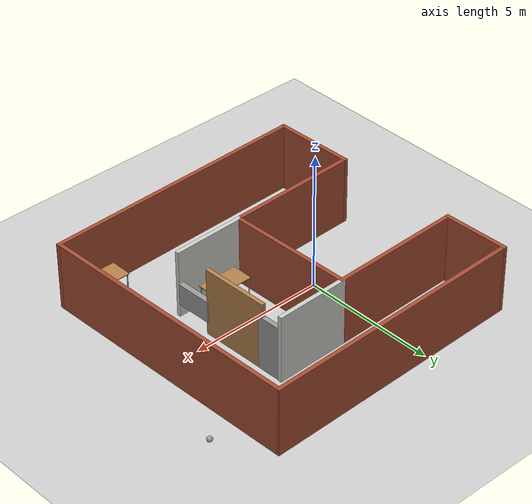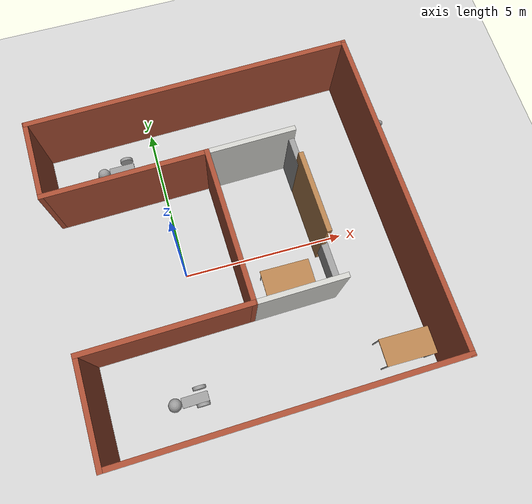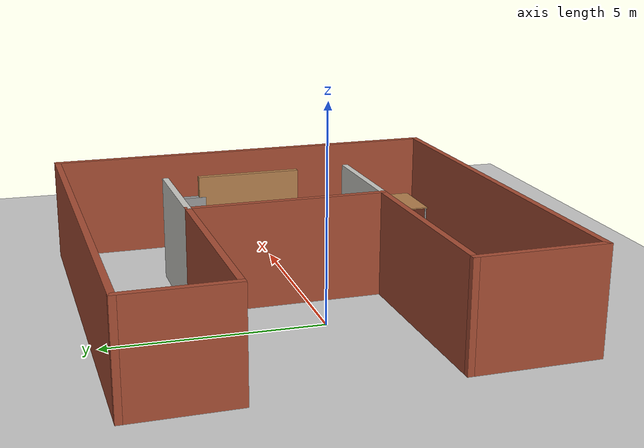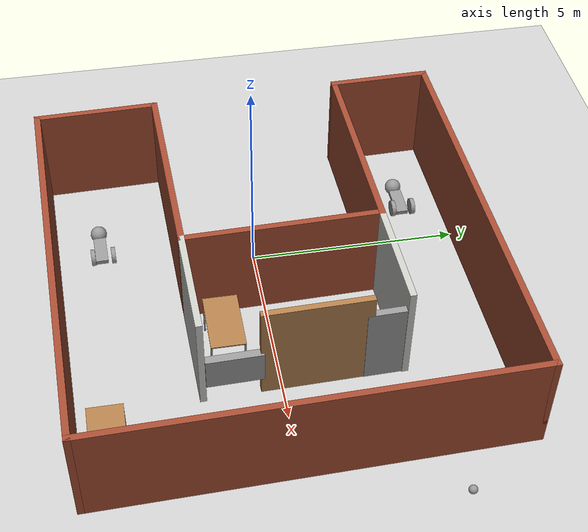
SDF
<sdf version="1.6">
 <world name="default">
  <plugin name="welcome" filename="libwelcome.so"/>
  <light name="sun" type="directional">
   <pose>0 0 10 0 -0 0</pose>
   <diffuse>0.8 0.8 0.8 1</diffuse>
   <specular>0.2 0.2 0.2 1</specular>
   <attenuation>
    <range>1000</range>
    <constant>0.9</constant>
    <linear>0.01</linear>
    <quadratic>0.001</quadratic>
   </attenuation>
   <direction>-0.5 0.1 -0.9</direction>
  </light>
  <model name="ground_plane">
   <static>1</static>
   <link name="link">
    <collision name="collision">
     <geometry><plane><normal>0 0 1</normal><size>100 100</size></plane></geometry>
     <surface>
      <contact><collide_bitmask>65535</collide_bitmask></contact>
      <friction><ode><mu>100</mu><mu2>50</mu2></ode></friction>
     </surface>
    </collision>
    <visual name="visual">
     <cast_shadows>0</cast_shadows>
     <geometry><plane><normal>0 0 1</normal><size>100 100</size></plane></geometry>
     <material>
      <script><uri>file://media/materials/scripts/gazebo.material</uri><name>Gazebo/Grey</name></script>
     </material>
    </visual>
   </link>
  </model>
  <gravity>0 0 -9.8</gravity>
  <magnetic_field>6e-06 2.3e-05 -4.2e-05</magnetic_field>
  <atmosphere type="adiabatic"/>
  <physics name="default_physics" default="0" type="ode">
   <max_step_size>0.001</max_step_size>
   <real_time_factor>1</real_time_factor>
   <real_time_update_rate>1000</real_time_update_rate>
  </physics>
  <scene><ambient>0.4 0.4 0.4 1</ambient><background>0.7 0.7 0.7 1</background><shadows>1</shadows></scene>
  <spherical_coordinates>
   <surface_model>EARTH_WGS84</surface_model>
   <latitude_deg>0</latitude_deg>
   <longitude_deg>0</longitude_deg>
   <elevation>0</elevation>
   <heading_deg>0</heading_deg>
  </spherical_coordinates>
  <model name="room">
   <pose>1.60544 0.182363 0 0 -0 1.59414</pose>
   <link name="Door_0">
    <collision name="Door_0_Collision">
     <geometry><box><size>0.9 0.17 2</size></box></geometry>
     <pose>0 0 1 0 -0 0</pose>
    </collision>
    <visual name="Door_0_Visual">
     <pose>0 0 1 0 -0 0</pose>
     <geometry><box><size>0.9 0.17 2</size></box></geometry>
     <material>
      <script><uri>file://media/materials/scripts/gazebo.material</uri><name>Gazebo/Grey</name></script>
     </material>
    </visual>
    <pose>2.07085 -2.49646 0 0 -0 0</pose>
   </link>
   <link name="Wall_0">
    <collision name="Wall_0_Collision">
     <geometry><box><size>10 0.15 2.5</size></box></geometry>
     <pose>0 0 1.25 0 -0 0</pose>
    </collision>
    <visual name="Wall_0_Visual">
     <pose>0 0 1.25 0 -0 0</pose>
     <geometry><box><size>10 0.15 2.5</size></box></geometry>
     <material>
      <script><uri>file://media/materials/scripts/gazebo.material</uri><name>Gazebo/Bricks</name></script>
      <ambient>1 1 1 1</ambient>
     </material>
     <meta><layer>0</layer></meta>
    </visual>
    <pose>-4.925 0 0 0 0 -1.5708</pose>
   </link>
   <link name="Wall_1">
    <collision name="Wall_1_Collision">
     <geometry><box><size>10 0.15 2.5</size></box></geometry>
     <pose>0 0 1.25 0 -0 0</pose>
    </collision>
    <visual name="Wall_1_Visual">
     <pose>0 0 1.25 0 -0 0</pose>
     <geometry><box><size>10 0.15 2.5</size></box></geometry>
     <material>
      <script><uri>file://media/materials/scripts/gazebo.material</uri><name>Gazebo/Bricks</name></script>
      <ambient>1 1 1 1</ambient>
     </material>
     <meta><layer>0</layer></meta>
    </visual>
    <pose>0 -4.925 0 0 -0 0</pose>
   </link>
   <link name="Wall_11">
    <collision name="Wall_11_Collision">
     <geometry><box><size>2.75 0.15 2.5</size></box></geometry>
     <pose>0 0 1.25 0 -0 0</pose>
    </collision>
    <visual name="Wall_11_Visual">
     <pose>0 0 1.25 0 -0 0</pose>
     <geometry><box><size>2.75 0.15 2.5</size></box></geometry>
     <material>
      <script><uri>file://media/materials/scripts/gazebo.material</uri><name>Gazebo/CeilingTiled</name></script>
      <ambient>0.996078 0.47451 0.0196078 1</ambient>
     </material>
     <meta><layer>0</layer></meta>
    </visual>
    <pose>2.575 -1.225 0 0 0 -1.5708</pose>
   </link>
   <link name="Wall_13">
    <collision name="Wall_13_Collision">
     <geometry><box><size>2.5 0.15 2.5</size></box></geometry>
     <pose>0 0 1.25 0 -0 0</pose>
    </collision>
    <visual name="Wall_13_Visual">
     <pose>0 0 1.25 0 -0 0</pose>
     <geometry><box><size>2.5 0.15 2.5</size></box></geometry>
     <material>
      <script><uri>file://media/materials/scripts/gazebo.material</uri><name>Gazebo/Wood</name></script>
      <ambient>1 1 1 1</ambient>
     </material>
     <meta><layer>0</layer></meta>
    </visual>
    <pose>0.532632 -2.49646 0 0 -0 0</pose>
   </link>
   <link name="Wall_2">
    <collision name="Wall_2_Collision">
     <geometry><box><size>10 0.15 2.5</size></box></geometry>
     <pose>0 0 1.25 0 -0 0</pose>
    </collision>
    <visual name="Wall_2_Visual">
     <pose>0 0 1.25 0 -0 0</pose>
     <geometry><box><size>10 0.15 2.5</size></box></geometry>
     <material>
      <script><uri>file://media/materials/scripts/gazebo.material</uri><name>Gazebo/Bricks</name></script>
      <ambient>1 1 1 1</ambient>
     </material>
     <meta><layer>0</layer></meta>
    </visual>
    <pose>4.925 0 0 0 -0 1.5708</pose>
   </link>
   <link name="Wall_3">
    <collision name="Wall_3_Collision">
     <geometry><box><size>2.5 0.15 2.5</size></box></geometry>
     <pose>0 0 1.25 0 -0 0</pose>
    </collision>
    <visual name="Wall_3_Visual">
     <pose>0 0 1.25 0 -0 0</pose>
     <geometry><box><size>2.5 0.15 2.5</size></box></geometry>
     <material>
      <script><uri>file://media/materials/scripts/gazebo.material</uri><name>Gazebo/Bricks</name></script>
      <ambient>1 1 1 1</ambient>
     </material>
     <meta><layer>0</layer></meta>
    </visual>
    <pose>3.75 4.925 0 0 -0 3.14159</pose>
   </link>
   <link name="Wall_4">
    <collision name="Wall_4_Collision">
     <geometry><box><size>5 0.15 2.5</size></box></geometry>
     <pose>0 0 1.25 0 -0 0</pose>
    </collision>
    <visual name="Wall_4_Visual">
     <pose>0 0 1.25 0 -0 0</pose>
     <geometry><box><size>5 0.15 2.5</size></box></geometry>
     <material>
      <script><uri>file://media/materials/scripts/gazebo.material</uri><name>Gazebo/Bricks</name></script>
      <ambient>1 1 1 1</ambient>
     </material>
     <meta><layer>0</layer></meta>
    </visual>
    <pose>2.575 2.5 0 0 0 -1.5708</pose>
   </link>
   <link name="Wall_5">
    <collision name="Wall_5_Collision">
     <geometry><box><size>4.75 0.15 2.5</size></box></geometry>
     <pose>0 0 1.25 0 -0 0</pose>
    </collision>
    <visual name="Wall_5_Visual">
     <pose>0 0 1.25 0 -0 0</pose>
     <geometry><box><size>4.75 0.15 2.5</size></box></geometry>
     <material>
      <script><uri>file://media/materials/scripts/gazebo.material</uri><name>Gazebo/Bricks</name></script>
      <ambient>1 1 1 1</ambient>
     </material>
     <meta><layer>0</layer></meta>
    </visual>
    <pose>0.275 0.075 0 0 -0 3.14159</pose>
   </link>
   <link name="Wall_6">
    <collision name="Wall_6_Collision">
     <geometry><box><size>5 0.15 2.5</size></box></geometry>
     <pose>0 0 1.25 0 -0 0</pose>
    </collision>
    <visual name="Wall_6_Visual">
     <pose>0 0 1.25 0 -0 0</pose>
     <geometry><box><size>5 0.15 2.5</size></box></geometry>
     <material>
      <script><uri>file://media/materials/scripts/gazebo.material</uri><name>Gazebo/Bricks</name></script>
      <ambient>1 1 1 1</ambient>
     </material>
     <meta><layer>0</layer></meta>
    </visual>
    <pose>-2.025 2.5 0 0 -0 1.5708</pose>
   </link>
   <link name="Wall_7">
    <collision name="Wall_7_Collision">
     <geometry><box><size>3.05 0.15 2.5</size></box></geometry>
     <pose>0 0 1.25 0 -0 0</pose>
    </collision>
    <visual name="Wall_7_Visual">
     <pose>0 0 1.25 0 -0 0</pose>
     <geometry><box><size>3.05 0.15 2.5</size></box></geometry>
     <material>
      <script><uri>file://media/materials/scripts/gazebo.material</uri><name>Gazebo/Bricks</name></script>
      <ambient>1 1 1 1</ambient>
     </material>
     <meta><layer>0</layer></meta>
    </visual>
    <pose>-3.475 4.925 0 0 -0 3.14159</pose>
   </link>
   <link name="Wall_9">
    <collision name="Wall_9_Collision">
     <geometry><box><size>2.75 0.15 2.5</size></box></geometry>
     <pose>0 0 1.25 0 -0 0</pose>
    </collision>
    <visual name="Wall_9_Visual">
     <pose>0 0 1.25 0 -0 0</pose>
     <geometry><box><size>2.75 0.15 2.5</size></box></geometry>
     <material>
      <script><uri>file://media/materials/scripts/gazebo.material</uri><name>Gazebo/CeilingTiled</name></script>
      <ambient>0.435294 0.796078 0.67451 1</ambient>
     </material>
     <meta><layer>0</layer></meta>
    </visual>
    <pose>-2.025 -1.225 0 0 0 -1.5708</pose>
   </link>
   <link name="Window_0">
    <collision name="Window_0_Collision">
     <geometry><box><size>1.3054 0.2 0.8</size></box></geometry>
     <pose>0 0 0.4 0 -0 0</pose>
    </collision>
    <visual name="Window_0_Visual">
     <pose>0 0 0.4 0 -0 0</pose>
     <geometry><box><size>1.3054 0.2 0.8</size></box></geometry>
     <material>
      <script><uri>file://media/materials/scripts/gazebo.material</uri><name>Gazebo/Grey</name></script>
     </material>
    </visual>
    <pose>-1.29407 -2.52306 0.5 0 -0 0</pose>
   </link>
   <static>1</static>
  </model>
  <model name="table">
   <static>1</static>
   <link name="link">
    <collision name="surface">
     <pose>0 0 1 0 -0 0</pose>
     <geometry><box><size>1.5 0.8 0.03</size></box></geometry>
     <surface><friction><ode><mu>0.6</mu><mu2>0.6</mu2></ode></friction></surface>
    </collision>
    <visual name="visual1">
     <pose>0 0 1 0 -0 0</pose>
     <geometry><box><size>1.5 0.8 0.03</size></box></geometry>
     <material>
      <script><uri>file://media/materials/scripts/gazebo.material</uri><name>Gazebo/Wood</name></script>
     </material>
    </visual>
    <collision name="front_left_leg">
     <pose>0.68 0.38 0.5 0 -0 0</pose>
     <geometry><cylinder><radius>0.02</radius><length>1</length></cylinder></geometry>
    </collision>
    <visual name="front_left_leg">
     <pose>0.68 0.38 0.5 0 -0 0</pose>
     <geometry><cylinder><radius>0.02</radius><length>1</length></cylinder></geometry>
     <material>
      <script><uri>file://media/materials/scripts/gazebo.material</uri><name>Gazebo/Grey</name></script>
     </material>
    </visual>
    <collision name="front_right_leg">
     <pose>0.68 -0.38 0.5 0 -0 0</pose>
     <geometry><cylinder><radius>0.02</radius><length>1</length></cylinder></geometry>
    </collision>
    <visual name="front_right_leg">
     <pose>0.68 -0.38 0.5 0 -0 0</pose>
     <geometry><cylinder><radius>0.02</radius><length>1</length></cylinder></geometry>
     <material>
      <script><uri>file://media/materials/scripts/gazebo.material</uri><name>Gazebo/Grey</name></script>
     </material>
    </visual>
    <collision name="back_right_leg">
     <pose>-0.68 -0.38 0.5 0 -0 0</pose>
     <geometry><cylinder><radius>0.02</radius><length>1</length></cylinder></geometry>
    </collision>
    <visual name="back_right_leg">
     <pose>-0.68 -0.38 0.5 0 -0 0</pose>
     <geometry><cylinder><radius>0.02</radius><length>1</length></cylinder></geometry>
     <material>
      <script><uri>file://media/materials/scripts/gazebo.material</uri><name>Gazebo/Grey</name></script>
     </material>
    </visual>
    <collision name="back_left_leg">
     <pose>-0.68 0.38 0.5 0 -0 0</pose>
     <geometry><cylinder><radius>0.02</radius><length>1</length></cylinder></geometry>
    </collision>
    <visual name="back_left_leg">
     <pose>-0.68 0.38 0.5 0 -0 0</pose>
     <geometry><cylinder><radius>0.02</radius><length>1</length></cylinder></geometry>
     <material>
      <script><uri>file://media/materials/scripts/gazebo.material</uri><name>Gazebo/Grey</name></script>
     </material>
    </visual>
   </link>
   <pose>2.86036 -1.10214 0 0 -0 0</pose>
  </model>
  <model name="table_0">
   <static>1</static>
   <link name="link">
    <collision name="surface">
     <pose>0 0 1 0 -0 0</pose>
     <geometry><box><size>1.5 0.8 0.03</size></box></geometry>
     <surface><friction><ode><mu>0.6</mu><mu2>0.6</mu2></ode></friction></surface>
    </collision>
    <visual name="visual1">
     <pose>0 0 1 0 -0 0</pose>
     <geometry><box><size>1.5 0.8 0.03</size></box></geometry>
     <material>
      <script><uri>file://media/materials/scripts/gazebo.material</uri><name>Gazebo/Wood</name></script>
     </material>
    </visual>
    <collision name="front_left_leg">
     <pose>0.68 0.38 0.5 0 -0 0</pose>
     <geometry><cylinder><radius>0.02</radius><length>1</length></cylinder></geometry>
    </collision>
    <visual name="front_left_leg">
     <pose>0.68 0.38 0.5 0 -0 0</pose>
     <geometry><cylinder><radius>0.02</radius><length>1</length></cylinder></geometry>
     <material>
      <script><uri>file://media/materials/scripts/gazebo.material</uri><name>Gazebo/Grey</name></script>
     </material>
    </visual>
    <collision name="front_right_leg">
     <pose>0.68 -0.38 0.5 0 -0 0</pose>
     <geometry><cylinder><radius>0.02</radius><length>1</length></cylinder></geometry>
    </collision>
    <visual name="front_right_leg">
     <pose>0.68 -0.38 0.5 0 -0 0</pose>
     <geometry><cylinder><radius>0.02</radius><length>1</length></cylinder></geometry>
     <material>
      <script><uri>file://media/materials/scripts/gazebo.material</uri><name>Gazebo/Grey</name></script>
     </material>
    </visual>
    <collision name="back_right_leg">
     <pose>-0.68 -0.38 0.5 0 -0 0</pose>
     <geometry><cylinder><radius>0.02</radius><length>1</length></cylinder></geometry>
    </collision>
    <visual name="back_right_leg">
     <pose>-0.68 -0.38 0.5 0 -0 0</pose>
     <geometry><cylinder><radius>0.02</radius><length>1</length></cylinder></geometry>
     <material>
      <script><uri>file://media/materials/scripts/gazebo.material</uri><name>Gazebo/Grey</name></script>
     </material>
    </visual>
    <collision name="back_left_leg">
     <pose>-0.68 0.38 0.5 0 -0 0</pose>
     <geometry><cylinder><radius>0.02</radius><length>1</length></cylinder></geometry>
    </collision>
    <visual name="back_left_leg">
     <pose>-0.68 0.38 0.5 0 -0 0</pose>
     <geometry><cylinder><radius>0.02</radius><length>1</length></cylinder></geometry>
     <material>
      <script><uri>file://media/materials/scripts/gazebo.material</uri><name>Gazebo/Grey</name></script>
     </material>
    </visual>
   </link>
   <pose>5.56028 -3.9158 0 0 -0 0</pose>
  </model>
  <model name="robot">
   <link name="link_0">
    <pose>0.05 -0.0225 0 0 -0 0</pose>
    <inertial>
     <mass>1</mass>
     <inertia>
      <ixx>0.166667</ixx>
      <ixy>0</ixy>
      <ixz>0</ixz>
      <iyy>0.166667</iyy>
      <iyz>0</iyz>
      <izz>0.166667</izz>
     </inertia>
    </inertial>
    <visual name="visual">
     <geometry><box><size>0.8 0.3 0.1</size></box></geometry>
     <material>
      <lighting>1</lighting>
      <script><uri>file://media/materials/scripts/gazebo.material</uri><name>Gazebo/Grey</name></script>
      <shader type="pixel"><normal_map>__default__</normal_map></shader>
      <ambient>0.3 0.3 0.3 1</ambient>
      <diffuse>0.7 0.7 0.7 1</diffuse>
      <specular>0.01 0.01 0.01 1</specular>
      <emissive>0 0 0 1</emissive>
     </material>
    </visual>
    <collision name="collision">
     <geometry><box><size>0.8 0.3 0.1</size></box></geometry>
     <surface>
      <friction>
       <ode><mu>1</mu><mu2>1</mu2><fdir1>0 0 0</fdir1><slip1>0</slip1><slip2>0</slip2></ode>
       <torsional>
        <coefficient>1</coefficient>
        <patch_radius>0</patch_radius>
        <surface_radius>0</surface_radius>
        <use_patch_radius>1</use_patch_radius>
        <ode><slip>0</slip></ode>
       </torsional>
      </friction>
      <bounce><restitution_coefficient>0</restitution_coefficient><threshold>1e+06</threshold></bounce>
      <contact>
       <collide_without_contact>0</collide_without_contact>
       <collide_without_contact_bitmask>1</collide_without_contact_bitmask>
       <collide_bitmask>1</collide_bitmask>
       <ode>
        <soft_cfm>0</soft_cfm>
        <soft_erp>0.2</soft_erp>
        <kp>1e+13</kp>
        <kd>1</kd>
        <max_vel>0.01</max_vel>
        <min_depth>0</min_depth>
       </ode>
       <bullet>
        <split_impulse>1</split_impulse>
        <split_impulse_penetration_threshold>-0.01</split_impulse_penetration_threshold>
        <soft_cfm>0</soft_cfm>
        <soft_erp>0.2</soft_erp>
        <kp>1e+13</kp>
        <kd>1</kd>
       </bullet>
      </contact>
     </surface>
    </collision>
   </link>
   <link name="link_1">
    <pose>0.25 0.267519 0 1.5707 -0 0</pose>
    <inertial>
     <mass>1</mass>
     <inertia><ixx>0.145833</ixx><ixy>0</ixy><ixz>0</ixz><iyy>0.145833</iyy><iyz>0</iyz><izz>0.125</izz></inertia>
    </inertial>
    <visual name="visual">
     <geometry><cylinder><radius>0.2</radius><length>0.1</length></cylinder></geometry>
     <material>
      <lighting>1</lighting>
      <script><uri>file://media/materials/scripts/gazebo.material</uri><name>Gazebo/Grey</name></script>
      <shader type="pixel"><normal_map>__default__</normal_map></shader>
      <ambient>0.3 0.3 0.3 1</ambient>
      <diffuse>0.7 0.7 0.7 1</diffuse>
      <specular>0.01 0.01 0.01 1</specular>
      <emissive>0 0 0 1</emissive>
     </material>
    </visual>
    <collision name="collision">
     <geometry><cylinder><radius>0.2</radius><length>0.1</length></cylinder></geometry>
     <surface>
      <friction>
       <ode><mu>1</mu><mu2>1</mu2><fdir1>0 0 0</fdir1><slip1>0</slip1><slip2>0</slip2></ode>
       <torsional>
        <coefficient>1</coefficient>
        <patch_radius>0</patch_radius>
        <surface_radius>0</surface_radius>
        <use_patch_radius>1</use_patch_radius>
        <ode><slip>0</slip></ode>
       </torsional>
      </friction>
      <bounce><restitution_coefficient>0</restitution_coefficient><threshold>1e+06</threshold></bounce>
      <contact>
       <collide_without_contact>0</collide_without_contact>
       <collide_without_contact_bitmask>1</collide_without_contact_bitmask>
       <collide_bitmask>1</collide_bitmask>
       <ode>
        <soft_cfm>0</soft_cfm>
        <soft_erp>0.2</soft_erp>
        <kp>1e+13</kp>
        <kd>1</kd>
        <max_vel>0.01</max_vel>
        <min_depth>0</min_depth>
       </ode>
       <bullet>
        <split_impulse>1</split_impulse>
        <split_impulse_penetration_threshold>-0.01</split_impulse_penetration_threshold>
        <soft_cfm>0</soft_cfm>
        <soft_erp>0.2</soft_erp>
        <kp>1e+13</kp>
        <kd>1</kd>
       </bullet>
      </contact>
     </surface>
    </collision>
   </link>
   <link name="link_1_clone">
    <pose>0.25 -0.222519 0 1.5707 -0 0</pose>
    <inertial>
     <mass>1</mass>
     <inertia><ixx>0.145833</ixx><ixy>0</ixy><ixz>0</ixz><iyy>0.145833</iyy><iyz>0</iyz><izz>0.125</izz></inertia>
    </inertial>
    <visual name="visual">
     <geometry><cylinder><radius>0.2</radius><length>0.1</length></cylinder></geometry>
     <material>
      <lighting>1</lighting>
      <script><uri>file://media/materials/scripts/gazebo.material</uri><name>Gazebo/Grey</name></script>
      <shader type="pixel"><normal_map>__default__</normal_map></shader>
      <ambient>0.3 0.3 0.3 1</ambient>
      <diffuse>0.7 0.7 0.7 1</diffuse>
      <specular>0.01 0.01 0.01 1</specular>
      <emissive>0 0 0 1</emissive>
     </material>
    </visual>
    <collision name="collision">
     <geometry><cylinder><radius>0.2</radius><length>0.1</length></cylinder></geometry>
     <surface>
      <friction>
       <ode><mu>1</mu><mu2>1</mu2><fdir1>0 0 0</fdir1><slip1>0</slip1><slip2>0</slip2></ode>
       <torsional>
        <coefficient>1</coefficient>
        <patch_radius>0</patch_radius>
        <surface_radius>0</surface_radius>
        <use_patch_radius>1</use_patch_radius>
        <ode><slip>0</slip></ode>
       </torsional>
      </friction>
      <bounce><restitution_coefficient>0</restitution_coefficient><threshold>1e+06</threshold></bounce>
      <contact>
       <collide_without_contact>0</collide_without_contact>
       <collide_without_contact_bitmask>1</collide_without_contact_bitmask>
       <collide_bitmask>1</collide_bitmask>
       <ode>
        <soft_cfm>0</soft_cfm>
        <soft_erp>0.2</soft_erp>
        <kp>1e+13</kp>
        <kd>1</kd>
        <max_vel>0.01</max_vel>
        <min_depth>0</min_depth>
       </ode>
       <bullet>
        <split_impulse>1</split_impulse>
        <split_impulse_penetration_threshold>-0.01</split_impulse_penetration_threshold>
        <soft_cfm>0</soft_cfm>
        <soft_erp>0.2</soft_erp>
        <kp>1e+13</kp>
        <kd>1</kd>
       </bullet>
      </contact>
     </surface>
    </collision>
   </link>
   <link name="link_2">
    <pose>-0.55 -0.0225 0 0 -0 0</pose>
    <inertial>
     <mass>1</mass>
     <inertia><ixx>0.1</ixx><ixy>0</ixy><ixz>0</ixz><iyy>0.1</iyy><iyz>0</iyz><izz>0.1</izz></inertia>
    </inertial>
    <visual name="visual">
     <geometry><sphere><radius>0.2</radius></sphere></geometry>
     <material>
      <lighting>1</lighting>
      <script><uri>file://media/materials/scripts/gazebo.material</uri><name>Gazebo/Grey</name></script>
      <shader type="pixel"><normal_map>__default__</normal_map></shader>
      <ambient>0.3 0.3 0.3 1</ambient>
      <diffuse>0.7 0.7 0.7 1</diffuse>
      <specular>0.01 0.01 0.01 1</specular>
      <emissive>0 0 0 1</emissive>
     </material>
    </visual>
    <collision name="collision">
     <geometry><sphere><radius>0.2</radius></sphere></geometry>
     <surface>
      <friction>
       <ode><mu>1</mu><mu2>1</mu2><fdir1>0 0 0</fdir1><slip1>0</slip1><slip2>0</slip2></ode>
       <torsional>
        <coefficient>1</coefficient>
        <patch_radius>0</patch_radius>
        <surface_radius>0</surface_radius>
        <use_patch_radius>1</use_patch_radius>
        <ode><slip>0</slip></ode>
       </torsional>
      </friction>
      <bounce><restitution_coefficient>0</restitution_coefficient><threshold>1e+06</threshold></bounce>
      <contact>
       <collide_without_contact>0</collide_without_contact>
       <collide_without_contact_bitmask>1</collide_without_contact_bitmask>
       <collide_bitmask>1</collide_bitmask>
       <ode>
        <soft_cfm>0</soft_cfm>
        <soft_erp>0.2</soft_erp>
        <kp>1e+13</kp>
        <kd>1</kd>
        <max_vel>0.01</max_vel>
        <min_depth>0</min_depth>
       </ode>
       <bullet>
        <split_impulse>1</split_impulse>
        <split_impulse_penetration_threshold>-0.01</split_impulse_penetration_threshold>
        <soft_cfm>0</soft_cfm>
        <soft_erp>0.2</soft_erp>
        <kp>1e+13</kp>
        <kd>1</kd>
       </bullet>
      </contact>
     </surface>
    </collision>
   </link>
   <joint name="link_0_JOINT_0" type="revolute">
    <parent>link_0</parent>
    <child>link_1</child>
    <axis>
     <xyz>0 0 1</xyz>
     <use_parent_model_frame>0</use_parent_model_frame>
     <limit>
      <lower>-1.79769e+308</lower>
      <upper>1.79769e+308</upper>
      <effort>-1</effort>
      <velocity>-1</velocity>
     </limit>
     <dynamics>
      <spring_reference>0</spring_reference>
      <spring_stiffness>0</spring_stiffness>
      <damping>0</damping>
     </dynamics>
    </axis>
    <physics>
     <ode><limit><cfm>0</cfm><erp>0.2</erp></limit><suspension><cfm>0</cfm><erp>0.2</erp></suspension></ode>
    </physics>
   </joint>
   <joint name="link_0_JOINT_1" type="revolute">
    <parent>link_0</parent>
    <child>link_1_clone</child>
    <axis>
     <xyz>0 0 1</xyz>
     <use_parent_model_frame>0</use_parent_model_frame>
     <limit>
      <lower>-1.79769e+308</lower>
      <upper>1.79769e+308</upper>
      <effort>-1</effort>
      <velocity>-1</velocity>
     </limit>
     <dynamics>
      <spring_reference>0</spring_reference>
      <spring_stiffness>0</spring_stiffness>
      <damping>0</damping>
     </dynamics>
    </axis>
    <physics>
     <ode><limit><cfm>0</cfm><erp>0.2</erp></limit><suspension><cfm>0</cfm><erp>0.2</erp></suspension></ode>
    </physics>
   </joint>
   <joint name="link_0_JOINT_3" type="ball">
    <parent>link_0</parent>
    <child>link_2</child>
    <physics>
     <ode><limit><cfm>0</cfm><erp>0.2</erp></limit><suspension><cfm>0</cfm><erp>0.2</erp></suspension></ode>
    </physics>
   </joint>
   <static>0</static>
   <pose>-0.707399 -3.66951 0.2 2e-06 -0 0.019978</pose>
  </model>
  <model name="robot_0">
   <link name="link_0">
    <pose>0.05 -0.0225 0 0 -0 0</pose>
    <inertial>
     <mass>1</mass>
     <inertia>
      <ixx>0.166667</ixx>
      <ixy>0</ixy>
      <ixz>0</ixz>
      <iyy>0.166667</iyy>
      <iyz>0</iyz>
      <izz>0.166667</izz>
     </inertia>
    </inertial>
    <visual name="visual">
     <geometry><box><size>0.8 0.3 0.1</size></box></geometry>
     <material>
      <lighting>1</lighting>
      <script><uri>file://media/materials/scripts/gazebo.material</uri><name>Gazebo/Grey</name></script>
      <shader type="pixel"><normal_map>__default__</normal_map></shader>
      <ambient>0.3 0.3 0.3 1</ambient>
      <diffuse>0.7 0.7 0.7 1</diffuse>
      <specular>0.01 0.01 0.01 1</specular>
      <emissive>0 0 0 1</emissive>
     </material>
    </visual>
    <collision name="collision">
     <geometry><box><size>0.8 0.3 0.1</size></box></geometry>
     <surface>
      <friction>
       <ode><mu>1</mu><mu2>1</mu2><fdir1>0 0 0</fdir1><slip1>0</slip1><slip2>0</slip2></ode>
       <torsional>
        <coefficient>1</coefficient>
        <patch_radius>0</patch_radius>
        <surface_radius>0</surface_radius>
        <use_patch_radius>1</use_patch_radius>
        <ode><slip>0</slip></ode>
       </torsional>
      </friction>
      <bounce><restitution_coefficient>0</restitution_coefficient><threshold>1e+06</threshold></bounce>
      <contact>
       <collide_without_contact>0</collide_without_contact>
       <collide_without_contact_bitmask>1</collide_without_contact_bitmask>
       <collide_bitmask>1</collide_bitmask>
       <ode>
        <soft_cfm>0</soft_cfm>
        <soft_erp>0.2</soft_erp>
        <kp>1e+13</kp>
        <kd>1</kd>
        <max_vel>0.01</max_vel>
        <min_depth>0</min_depth>
       </ode>
       <bullet>
        <split_impulse>1</split_impulse>
        <split_impulse_penetration_threshold>-0.01</split_impulse_penetration_threshold>
        <soft_cfm>0</soft_cfm>
        <soft_erp>0.2</soft_erp>
        <kp>1e+13</kp>
        <kd>1</kd>
       </bullet>
      </contact>
     </surface>
    </collision>
   </link>
   <link name="link_1">
    <pose>0.25 0.267519 0 1.5707 -0 0</pose>
    <inertial>
     <mass>1</mass>
     <inertia><ixx>0.145833</ixx><ixy>0</ixy><ixz>0</ixz><iyy>0.145833</iyy><iyz>0</iyz><izz>0.125</izz></inertia>
    </inertial>
    <visual name="visual">
     <geometry><cylinder><radius>0.2</radius><length>0.1</length></cylinder></geometry>
     <material>
      <lighting>1</lighting>
      <script><uri>file://media/materials/scripts/gazebo.material</uri><name>Gazebo/Grey</name></script>
      <shader type="pixel"><normal_map>__default__</normal_map></shader>
      <ambient>0.3 0.3 0.3 1</ambient>
      <diffuse>0.7 0.7 0.7 1</diffuse>
      <specular>0.01 0.01 0.01 1</specular>
      <emissive>0 0 0 1</emissive>
     </material>
    </visual>
    <collision name="collision">
     <geometry><cylinder><radius>0.2</radius><length>0.1</length></cylinder></geometry>
     <surface>
      <friction>
       <ode><mu>1</mu><mu2>1</mu2><fdir1>0 0 0</fdir1><slip1>0</slip1><slip2>0</slip2></ode>
       <torsional>
        <coefficient>1</coefficient>
        <patch_radius>0</patch_radius>
        <surface_radius>0</surface_radius>
        <use_patch_radius>1</use_patch_radius>
        <ode><slip>0</slip></ode>
       </torsional>
      </friction>
      <bounce><restitution_coefficient>0</restitution_coefficient><threshold>1e+06</threshold></bounce>
      <contact>
       <collide_without_contact>0</collide_without_contact>
       <collide_without_contact_bitmask>1</collide_without_contact_bitmask>
       <collide_bitmask>1</collide_bitmask>
       <ode>
        <soft_cfm>0</soft_cfm>
        <soft_erp>0.2</soft_erp>
        <kp>1e+13</kp>
        <kd>1</kd>
        <max_vel>0.01</max_vel>
        <min_depth>0</min_depth>
       </ode>
       <bullet>
        <split_impulse>1</split_impulse>
        <split_impulse_penetration_threshold>-0.01</split_impulse_penetration_threshold>
        <soft_cfm>0</soft_cfm>
        <soft_erp>0.2</soft_erp>
        <kp>1e+13</kp>
        <kd>1</kd>
       </bullet>
      </contact>
     </surface>
    </collision>
   </link>
   <link name="link_1_clone">
    <pose>0.25 -0.222519 0 1.5707 -0 0</pose>
    <inertial>
     <mass>1</mass>
     <inertia><ixx>0.145833</ixx><ixy>0</ixy><ixz>0</ixz><iyy>0.145833</iyy><iyz>0</iyz><izz>0.125</izz></inertia>
    </inertial>
    <visual name="visual">
     <geometry><cylinder><radius>0.2</radius><length>0.1</length></cylinder></geometry>
     <material>
      <lighting>1</lighting>
      <script><uri>file://media/materials/scripts/gazebo.material</uri><name>Gazebo/Grey</name></script>
      <shader type="pixel"><normal_map>__default__</normal_map></shader>
      <ambient>0.3 0.3 0.3 1</ambient>
      <diffuse>0.7 0.7 0.7 1</diffuse>
      <specular>0.01 0.01 0.01 1</specular>
      <emissive>0 0 0 1</emissive>
     </material>
    </visual>
    <collision name="collision">
     <geometry><cylinder><radius>0.2</radius><length>0.1</length></cylinder></geometry>
     <surface>
      <friction>
       <ode><mu>1</mu><mu2>1</mu2><fdir1>0 0 0</fdir1><slip1>0</slip1><slip2>0</slip2></ode>
       <torsional>
        <coefficient>1</coefficient>
        <patch_radius>0</patch_radius>
        <surface_radius>0</surface_radius>
        <use_patch_radius>1</use_patch_radius>
        <ode><slip>0</slip></ode>
       </torsional>
      </friction>
      <bounce><restitution_coefficient>0</restitution_coefficient><threshold>1e+06</threshold></bounce>
      <contact>
       <collide_without_contact>0</collide_without_contact>
       <collide_without_contact_bitmask>1</collide_without_contact_bitmask>
       <collide_bitmask>1</collide_bitmask>
       <ode>
        <soft_cfm>0</soft_cfm>
        <soft_erp>0.2</soft_erp>
        <kp>1e+13</kp>
        <kd>1</kd>
        <max_vel>0.01</max_vel>
        <min_depth>0</min_depth>
       </ode>
       <bullet>
        <split_impulse>1</split_impulse>
        <split_impulse_penetration_threshold>-0.01</split_impulse_penetration_threshold>
        <soft_cfm>0</soft_cfm>
        <soft_erp>0.2</soft_erp>
        <kp>1e+13</kp>
        <kd>1</kd>
       </bullet>
      </contact>
     </surface>
    </collision>
   </link>
   <link name="link_2">
    <pose>-0.55 -0.0225 0 0 -0 0</pose>
    <inertial>
     <mass>1</mass>
     <inertia><ixx>0.1</ixx><ixy>0</ixy><ixz>0</ixz><iyy>0.1</iyy><iyz>0</iyz><izz>0.1</izz></inertia>
    </inertial>
    <visual name="visual">
     <geometry><sphere><radius>0.2</radius></sphere></geometry>
     <material>
      <lighting>1</lighting>
      <script><uri>file://media/materials/scripts/gazebo.material</uri><name>Gazebo/Grey</name></script>
      <shader type="pixel"><normal_map>__default__</normal_map></shader>
      <ambient>0.3 0.3 0.3 1</ambient>
      <diffuse>0.7 0.7 0.7 1</diffuse>
      <specular>0.01 0.01 0.01 1</specular>
      <emissive>0 0 0 1</emissive>
     </material>
    </visual>
    <collision name="collision">
     <geometry><sphere><radius>0.2</radius></sphere></geometry>
     <surface>
      <friction>
       <ode><mu>1</mu><mu2>1</mu2><fdir1>0 0 0</fdir1><slip1>0</slip1><slip2>0</slip2></ode>
       <torsional>
        <coefficient>1</coefficient>
        <patch_radius>0</patch_radius>
        <surface_radius>0</surface_radius>
        <use_patch_radius>1</use_patch_radius>
        <ode><slip>0</slip></ode>
       </torsional>
      </friction>
      <bounce><restitution_coefficient>0</restitution_coefficient><threshold>1e+06</threshold></bounce>
      <contact>
       <collide_without_contact>0</collide_without_contact>
       <collide_without_contact_bitmask>1</collide_without_contact_bitmask>
       <collide_bitmask>1</collide_bitmask>
       <ode>
        <soft_cfm>0</soft_cfm>
        <soft_erp>0.2</soft_erp>
        <kp>1e+13</kp>
        <kd>1</kd>
        <max_vel>0.01</max_vel>
        <min_depth>0</min_depth>
       </ode>
       <bullet>
        <split_impulse>1</split_impulse>
        <split_impulse_penetration_threshold>-0.01</split_impulse_penetration_threshold>
        <soft_cfm>0</soft_cfm>
        <soft_erp>0.2</soft_erp>
        <kp>1e+13</kp>
        <kd>1</kd>
       </bullet>
      </contact>
     </surface>
    </collision>
   </link>
   <joint name="link_0_JOINT_0" type="revolute">
    <parent>link_0</parent>
    <child>link_1</child>
    <axis>
     <xyz>0 0 1</xyz>
     <use_parent_model_frame>0</use_parent_model_frame>
     <limit>
      <lower>-1.79769e+308</lower>
      <upper>1.79769e+308</upper>
      <effort>-1</effort>
      <velocity>-1</velocity>
     </limit>
     <dynamics>
      <spring_reference>0</spring_reference>
      <spring_stiffness>0</spring_stiffness>
      <damping>0</damping>
     </dynamics>
    </axis>
    <physics>
     <ode><limit><cfm>0</cfm><erp>0.2</erp></limit><suspension><cfm>0</cfm><erp>0.2</erp></suspension></ode>
    </physics>
   </joint>
   <joint name="link_0_JOINT_1" type="revolute">
    <parent>link_0</parent>
    <child>link_1_clone</child>
    <axis>
     <xyz>0 0 1</xyz>
     <use_parent_model_frame>0</use_parent_model_frame>
     <limit>
      <lower>-1.79769e+308</lower>
      <upper>1.79769e+308</upper>
      <effort>-1</effort>
      <velocity>-1</velocity>
     </limit>
     <dynamics>
      <spring_reference>0</spring_reference>
      <spring_stiffness>0</spring_stiffness>
      <damping>0</damping>
     </dynamics>
    </axis>
    <physics>
     <ode><limit><cfm>0</cfm><erp>0.2</erp></limit><suspension><cfm>0</cfm><erp>0.2</erp></suspension></ode>
    </physics>
   </joint>
   <joint name="link_0_JOINT_3" type="ball">
    <parent>link_0</parent>
    <child>link_2</child>
    <physics>
     <ode><limit><cfm>0</cfm><erp>0.2</erp></limit><suspension><cfm>0</cfm><erp>0.2</erp></suspension></ode>
    </physics>
   </joint>
   <static>0</static>
   <pose>-1.22086 3.97433 0.200003 -0 -6e-06 0.00733</pose>
  </model>
  <model name="my_ball">
   <link name="link">
    <inertial>
     <mass>1</mass>
     <inertia><ixx>0.1</ixx><ixy>0</ixy><ixz>0</ixz><iyy>0.1</iyy><iyz>0</iyz><izz>0.1</izz></inertia>
    </inertial>
    <visual name="visual">
     <geometry><sphere><radius>0.1</radius></sphere></geometry>
     <material>
      <script><name>Gazebo/Grey</name><uri>file://media/materials/scripts/gazebo.material</uri></script>
      <shader type="pixel"><normal_map>__default__</normal_map></shader>
      <ambient>1 1 1 1</ambient>
      <diffuse>1 1 1 1</diffuse>
      <specular>1 1 1 1</specular>
      <emissive>1 1 1 1</emissive>
     </material>
    </visual>
    <collision name="collision">
     <geometry><sphere><radius>0.1</radius></sphere></geometry>
     <surface>
      <friction>
       <ode><mu>1</mu><mu2>1</mu2><fdir1>0 0 0</fdir1><slip1>0</slip1><slip2>0</slip2></ode>
       <torsional>
        <coefficient>1</coefficient>
        <patch_radius>0</patch_radius>
        <surface_radius>0</surface_radius>
        <use_patch_radius>1</use_patch_radius>
        <ode><slip>0</slip></ode>
       </torsional>
      </friction>
      <bounce><restitution_coefficient>0</restitution_coefficient><threshold>1e+06</threshold></bounce>
      <contact>
       <collide_without_contact>0</collide_without_contact>
       <collide_without_contact_bitmask>1</collide_without_contact_bitmask>
       <collide_bitmask>1</collide_bitmask>
       <ode>
        <soft_cfm>0</soft_cfm>
        <soft_erp>0.2</soft_erp>
        <kp>1e+13</kp>
        <kd>1</kd>
        <max_vel>0.01</max_vel>
        <min_depth>0</min_depth>
       </ode>
       <bullet>
        <split_impulse>1</split_impulse>
        <split_impulse_penetration_threshold>-0.01</split_impulse_penetration_threshold>
        <soft_cfm>0</soft_cfm>
        <soft_erp>0.2</soft_erp>
        <kp>1e+13</kp>
        <kd>1</kd>
       </bullet>
      </contact>
     </surface>
    </collision>
   </link>
   <static>0</static>
   <pose>7.53677 3.42628 0.1 0 -0 0</pose>
  </model>
 </world>
</sdf>
